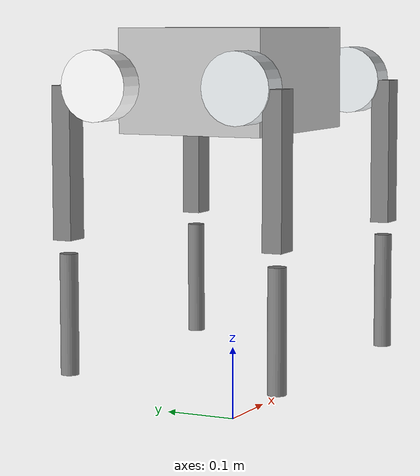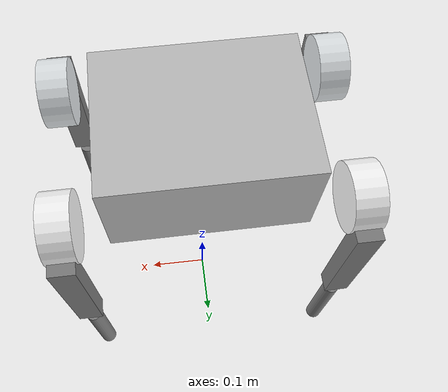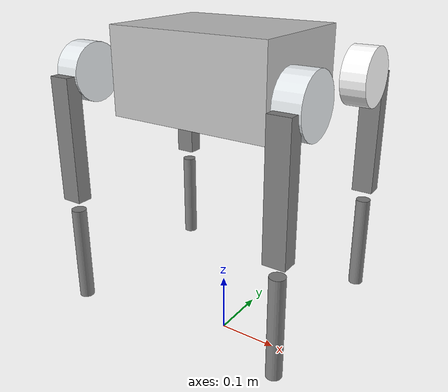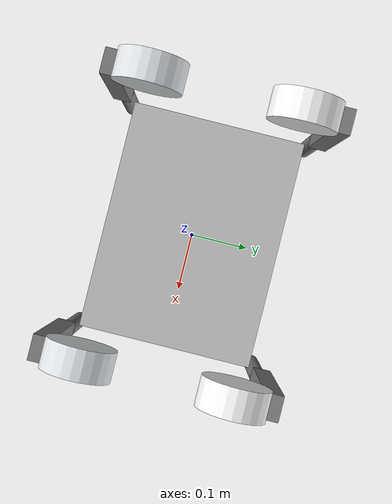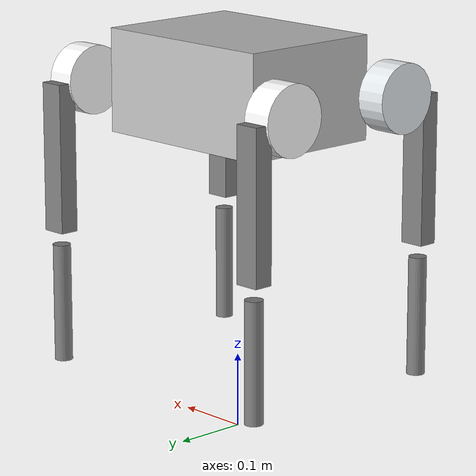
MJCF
<?xml version="1.0" ?>
<mujoco model="vbot">
  <compiler angle="radian" />
  <option cone="elliptic" impratio="100" />
  <default>
    <material specular="0" shininess="0.25"/>
    <default class="vita">
      <geom friction="0.4" margin="0.001" condim="3" />
      <joint axis="0 1 0" damping="0.1" armature="0.0043" frictionloss="0.2" />
      <motor forcerange="-17 17" />
      <default class="R_hip_joint">
        <joint axis="1 0 0" range="-0.73304 0.73304" actuatorfrcrange="-17 17" limited="true" />
      </default>
      <default class="L_hip_joint">
        <joint axis="1 0 0" range="-0.73304 0.73304" actuatorfrcrange="-17 17" limited="true" />
      </default>
      <default class="F_thigh_joint">
        <joint range="-1.559 3.1298" actuatorfrcrange="-17 17" limited="true" />
      </default>
      <default class="R_thigh_joint">
        <joint range="-0.51181 4.177" actuatorfrcrange="-17 17" limited="true" />
      </default>
      <default class="calf_joint">
        <joint range="-2.6387 -0.7854" actuatorfrcrange="-34 34" limited="true" damping="0.1" armature="0.04" frictionloss="0.2" />
        <motor forcerange="-34 34" />
      </default>
      <default class="visual">
        <geom contype="0" conaffinity="0" group="2" density="0" />
      </default>
      <default class="collision">
        <geom group="3" rgba="0.752941 0.752941 0.752941 1" />
        <default class="foot">
          <geom size="0.021" quat="0.707107 -0.707107 0 0" pos="0 0 0" />
        </default>
      </default>
    </default>
  </default>
  <worldbody>
    <light name="spotlight" mode="targetbodycom" target="base" pos="0 -1 2" cutoff="30"/>
    <body name="base" pos="0 0 0.462" childclass="vita">
      <inertial pos="0.026103 0.000278 0.024686" mass="9.016326" fullinertia="0.060632 0.144345 0.125819 -0.000200 -0.033265 -0.000044" />
      <freejoint name="joint_fixed_world" />
      <site name="trunk_imu" pos="0 0 0" />
      <geom name="visual_base" type="box" size="0.133329 0.101205 0.068913" pos="0 0 0.004583" rgba="0.752941 0.752941 0.752941 1" class="visual" />
      <geom name="collision_head_box" class="collision" size="0.084602 0.078997 0.041873" pos="0.18389 0 0.16552" type="box" rgba="0.498039 0.498039 0.498039 1" />
      <geom name="collision_middle_box" size="0.133329 0.101205 0.068913" pos="0 0 0.004583" type="box" class="collision" />
      <geom name="collision_front_dangban_box" size="0.0058255 0.029011 0.029011" pos="0.247938 0 0.006492" type="box" class="collision" />
      <geom name="collision_back_dangban_box" size="0.0058255 0.029011 0.023818" pos="-0.249278 0 0.006492" type="box" class="collision" />
      <geom name="collision_low_bar_FL_box" size="0.008 0.008 0.0065" pos="0.083 0.042 -0.086" type="box" class="collision" />
      <geom name="collision_low_bar_FR_box" size="0.008 0.008 0.0065" pos="0.083 -0.042 -0.086" type="box" class="collision" />
      <geom name="collision_low_bar_RL_box" size="0.008 0.008 0.0065" pos="-0.108 0.042 -0.086" type="box" class="collision" />
      <geom name="collision_low_bar_RR_box" size="0.008 0.008 0.0065" pos="-0.108 -0.042 -0.086" type="box" class="collision" />

      <body name="FR_hip" pos="0.18453 -0.051 0">
        <inertial pos="-0.027882 0.015355 0" quat="-0.137609 0.678417 0.233155 0.682973" mass="0.079643" diaginertia="8.72171e-05 7.7874e-05 2.29089e-05" />
        <joint name="FR_hip_joint" class="R_hip_joint" />
        <geom name="visual_FR_hip" type="cylinder" size="0.046 0.02" pos="0 -0.04875 0" quat="0.707107 0 0.707107 0" rgba="0.898039 0.917647 0.929412 1" class="visual" />
        <geom name="collision_FR_hip" type="cylinder" size="0.046 0.02" pos="0 -0.04875 0" quat="0.707107 0 0.707107 0" class="collision" />
        <body name="FR_thigh" pos="0 -0.0975 0">
          <inertial pos="-0.000498 0.038065 -0.024467" quat="0.975282 -0.219111 0.024734 0.0142991" mass="1.55038" diaginertia="0.00679074 0.00586921 0.00204705" />
          <joint name="FR_thigh_joint" class="F_thigh_joint" />
          <geom name="visual_FR_thigh" type="box" size="0.017 0.013 0.1" pos="0 0 -0.1" rgba="0.498039 0.498039 0.498039 1" class="visual" />
          <geom name="collision_mainlink_box" size="0.0129095 0.013 0.06282" pos="-0.029488 -0.000724 -0.10287" quat="0.999071 0 -0.0430946 0" type="box" class="collision" />
          <geom name="collision_self_check_box" size="0.00126 0.013 0.0627725" pos="0.01289 -0.000372 -0.102949" quat="0.997989 0 0.063395 0" type="box" class="collision" />
          <geom name="collision_motor_cylinder" size="0.044 0.038455" pos="0 0.02351 -0.000177" quat="-0.707107 0.707107 0 0" type="cylinder" class="collision" />
          <geom name="collision_revo_left_box" size="0.015 0.002 0.02" pos="-0.00614 0.014268 -0.188644" quat="0.995396 0 -0.0958456 0" type="box" class="collision" />
          <geom name="collision_revo_right_box" size="0.015 0.002 0.02" pos="-0.00614 -0.014448 -0.188644" quat="0.995396 0 -0.0958456 0" type="box" class="collision" />
          <body name="FR_calf" pos="0 0 -0.1985">
            <inertial pos="0.00261631 0 -0.125302" quat="0.706944 -0.0151852 -0.0151852 0.706944" mass="0.183986" diaginertia="0.00125035 0.0012368 3.55485e-05" />
            <joint name="FR_calf_joint" class="calf_joint" />
            <geom name="visual_FR_calf" type="cylinder" size="0.012 0.08" pos="0 0 -0.1" rgba="0.498039 0.498039 0.498039 1" class="visual" />
            <geom name="collision_upper_box" size="0.012 0.007644 0.0242675" pos="0.018049 0 -0.186508" quat="0.998889 0 0.047125 0" type="box" class="collision" />
            <geom name="collision_mid_box" size="0.01 0.009 0.06" pos="0.00376 0 -0.099894" quat="0.994686 0 -0.102956 0" type="box" class="collision" />
            <geom name="collision_lower_box" size="0.014 0.007644 0.02" pos="-0.005451 0 -0.017378" quat="0.999978 0 0.00661145 0" type="box" class="collision" />
            <geom name="collision_backprotect_box" size="0.002 0.007644 0.02" pos="-0.001309 0 -0.175631" quat="0.981769 0 0.19008 0" type="box" class="collision" />
            <body name="FR_foot" pos="0 0 -0.214">
              <geom class="foot" name="FR" />
            </body>
          </body>
        </body>
      </body>

      <body name="FL_hip" pos="0.18453 0.051 0">
        <inertial pos="-0.027882 -0.015355 0" quat="0.137609 0.678417 -0.233155 0.682973" mass="0.079643" diaginertia="8.72171e-05 7.7874e-05 2.29089e-05" />
        <joint name="FL_hip_joint" class="L_hip_joint" />
        <geom name="visual_FL_hip" type="cylinder" size="0.046 0.02" pos="0 0.04875 0" quat="0.707107 0 0.707107 0" rgba="1 1 1 1" class="visual" />
        <geom name="collision_FL_hip" type="cylinder" size="0.046 0.02" pos="0 0.04875 0" quat="0.707107 0 0.707107 0" class="collision" />
        <body name="FL_thigh" pos="0 0.0975 0">
          <inertial pos="-0.000498 -0.038065 -0.024467" quat="0.975282 0.219111 0.024734 -0.0142991" mass="1.55038" diaginertia="0.00679074 0.00586921 0.00204705" />
          <joint name="FL_thigh_joint" class="F_thigh_joint" />
          <geom name="visual_FL_thigh" type="box" size="0.017 0.013 0.1" pos="0 0 -0.1" rgba="0.498039 0.498039 0.498039 1" class="visual" />
          <geom name="collision_mainlink_box" size="0.0129095 0.013 0.06282" pos="-0.029488 0.000724 -0.10287" quat="0.999071 0 -0.0430946 0" type="box" class="collision" />
          <geom name="collision_self_check_box" size="0.00126 0.013 0.0627725" pos="0.01289 0.000372 -0.102949" quat="0.997989 0 0.063395 0" type="box" class="collision" />
          <geom name="collision_motor_cylinder" size="0.044 0.038455" pos="0 -0.02351 -0.000177" quat="-0.707107 0.707107 0 0" type="cylinder" class="collision" />
          <geom name="collision_revo_left_box" size="0.015 0.002 0.02" pos="-0.00614 -0.014268 -0.188644" quat="0.995396 0 -0.0958456 0" type="box" class="collision" />
          <geom name="collision_revo_right_box" size="0.015 0.002 0.02" pos="-0.00614 0.014448 -0.188644" quat="0.995396 0 -0.0958456 0" type="box" class="collision" />
          <body name="FL_calf" pos="0 0 -0.1985">
            <inertial pos="0.00261631 0 -0.125302" quat="0.706944 -0.0151852 -0.0151852 0.706944" mass="0.183986" diaginertia="0.00125035 0.0012368 3.55485e-05" />
            <joint name="FL_calf_joint" class="calf_joint" />
            <geom name="visual_FL_calf" type="cylinder" size="0.012 0.08" pos="0 0 -0.1" rgba="0.498039 0.498039 0.498039 1" class="visual" />
            <geom name="collision_upper_box" size="0.012 0.007644 0.0242675" pos="0.018049 0 -0.186508" quat="0.998889 0 0.047125 0" type="box" class="collision" />
            <geom name="collision_mid_box" size="0.01 0.009 0.06" pos="0.00376 0 -0.099894" quat="0.994686 0 -0.102956 0" type="box" class="collision" />
            <geom name="collision_lower_box" size="0.014 0.007644 0.02" pos="-0.005451 0 -0.017378" quat="0.999978 0 0.00661145 0" type="box" class="collision" />
            <geom name="collision_backprotect_box" size="0.002 0.007644 0.02" pos="-0.001309 0 -0.175631" quat="0.981769 0 0.19008 0" type="box" class="collision" />
            <body name="FL_foot" pos="0 0 -0.214">
              <geom class="foot" name="FL" />
            </body>
          </body>
        </body>
      </body>

      <body name="RR_hip" pos="-0.18453 -0.051 0">
        <inertial pos="0.027882 0.015355 0" quat="0.233155 0.682973 -0.137609 0.678417" mass="0.079643" diaginertia="8.72171e-05 7.7874e-05 2.29089e-05" />
        <joint name="RR_hip_joint" class="R_hip_joint" />
        <geom name="visual_RR_hip" type="cylinder" size="0.046 0.02" pos="0 -0.04875 0" quat="0.707107 0 0.707107 0" rgba="0.898039 0.917647 0.929412 1" class="visual" />
        <geom name="collision_RR_hip" type="cylinder" size="0.046 0.02" pos="0 -0.04875 0" quat="0.707107 0 0.707107 0" class="collision" />
        <body name="RR_thigh" pos="0 -0.0975 0">
          <inertial pos="-0.000498 0.038065 -0.024467" quat="0.975282 -0.219111 0.024734 0.0142991" mass="1.55038" diaginertia="0.00679074 0.00586921 0.00204705" />
          <joint name="RR_thigh_joint" class="R_thigh_joint" />
          <geom name="visual_RR_thigh" type="box" size="0.017 0.013 0.1" pos="0 0 -0.1" rgba="0.498039 0.498039 0.498039 1" class="visual" />
          <geom name="collision_mainlink_box" size="0.0129095 0.013 0.06282" pos="-0.029488 -0.000724 -0.10287" quat="0.999071 0 -0.0430946 0" type="box" class="collision" />
          <geom name="collision_self_check_box" size="0.00126 0.013 0.0627725" pos="0.01289 -0.000372 -0.102949" quat="0.997989 0 0.063395 0" type="box" class="collision" />
          <geom name="collision_motor_cylinder" size="0.044 0.038455" pos="0 0.02351 -0.000177" quat="-0.707107 0.707107 0 0" type="cylinder" class="collision" />
          <geom name="collision_revo_left_box" size="0.015 0.002 0.02" pos="-0.00614 0.014268 -0.188644" quat="0.995396 0 -0.0958456 0" type="box" class="collision" />
          <geom name="collision_revo_right_box" size="0.015 0.002 0.02" pos="-0.00614 -0.014448 -0.188644" quat="0.995396 0 -0.0958456 0" type="box" class="collision" />
          <body name="RR_calf" pos="0 0 -0.1985">
            <inertial pos="0.00261631 0 -0.125302" quat="0.706944 -0.0151852 -0.0151852 0.706944" mass="0.183986" diaginertia="0.00125035 0.0012368 3.55485e-05" />
            <joint name="RR_calf_joint" class="calf_joint" />
            <geom name="visual_RR_calf" type="cylinder" size="0.012 0.08" pos="0 0 -0.1" rgba="0.498039 0.498039 0.498039 1" class="visual" />
            <geom name="collision_upper_box" size="0.012 0.007644 0.0242675" pos="0.018049 0 -0.186508" quat="0.998889 0 0.047125 0" type="box" class="collision" />
            <geom name="collision_mid_box" size="0.01 0.009 0.06" pos="0.00376 0 -0.099894" quat="0.994686 0 -0.102956 0" type="box" class="collision" />
            <geom name="collision_lower_box" size="0.014 0.007644 0.02" pos="-0.005451 0 -0.017378" quat="0.999978 0 0.00661145 0" type="box" class="collision" />
            <geom name="collision_backprotect_box" size="0.002 0.007644 0.02" pos="-0.001309 0 -0.175631" quat="0.981769 0 0.19008 0" type="box" class="collision" />
            <body name="RR_foot" pos="0 0 -0.214">
              <geom class="foot" name="RR" />
            </body>
          </body>
        </body>
      </body>

      <body name="RL_hip" pos="-0.18453 0.051 0">
        <inertial pos="0.027882 -0.015355 0" quat="-0.233155 0.682973 0.137609 0.678417" mass="0.079643" diaginertia="8.72171e-05 7.7874e-05 2.29089e-05" />
        <joint name="RL_hip_joint" class="L_hip_joint" />
        <geom name="visual_RL_hip" type="cylinder" size="0.046 0.02" pos="0 0.04875 0" quat="0.707107 0 0.707107 0" rgba="1 1 1 1" class="visual" />
        <geom name="collision_RL_hip" type="cylinder" size="0.046 0.02" pos="0 0.04875 0" quat="0.707107 0 0.707107 0" class="collision" />
        <body name="RL_thigh" pos="0 0.0975 0">
          <inertial pos="-0.000498 -0.038065 -0.024467" quat="0.975282 0.219111 0.024734 -0.0142991" mass="1.55038" diaginertia="0.00679074 0.00586921 0.00204705" />
          <joint name="RL_thigh_joint" class="R_thigh_joint" />
          <geom name="visual_RL_thigh" type="box" size="0.017 0.013 0.1" pos="0 0 -0.1" rgba="0.498039 0.498039 0.498039 1" class="visual" />
          <geom name="collision_mainlink_box" size="0.0129095 0.013 0.06282" pos="-0.029488 0.000724 -0.10287" quat="0.999071 0 -0.0430946 0" type="box" class="collision" />
          <geom name="collision_self_check_box" size="0.00126 0.013 0.0627725" pos="0.01289 0.000372 -0.102949" quat="0.997989 0 0.063395 0" type="box" class="collision" />
          <geom name="collision_motor_cylinder" size="0.044 0.038455" pos="0 -0.02351 -0.000177" quat="-0.707107 0.707107 0 0" type="cylinder" class="collision" />
          <geom name="collision_revo_left_box" size="0.015 0.002 0.02" pos="-0.00614 -0.014268 -0.188644" quat="0.995396 0 -0.0958456 0" type="box" class="collision" />
          <geom name="collision_revo_right_box" size="0.015 0.002 0.02" pos="-0.00614 0.014448 -0.188644" quat="0.995396 0 -0.0958456 0" type="box" class="collision" />
          <body name="RL_calf" pos="0 0 -0.1985">
            <inertial pos="0.00261631 0 -0.125302" quat="0.706944 -0.0151852 -0.0151852 0.706944" mass="0.183986" diaginertia="0.00125035 0.0012368 3.55485e-05" />
            <joint name="RL_calf_joint" class="calf_joint" />
            <geom name="visual_RL_calf" type="cylinder" size="0.012 0.08" pos="0 0 -0.1" rgba="0.498039 0.498039 0.498039 1" class="visual" />
            <geom name="collision_upper_box" size="0.012 0.007644 0.0242675" pos="0.018049 0 -0.186508" quat="0.998889 0 0.047125 0" type="box" class="collision" />
            <geom name="collision_mid_box" size="0.01 0.009 0.06" pos="0.00376 0 -0.099894" quat="0.994686 0 -0.102956 0" type="box" class="collision" />
            <geom name="collision_lower_box" size="0.014 0.007644 0.02" pos="-0.005451 0 -0.017378" quat="0.999978 0 0.00661145 0" type="box" class="collision" />
            <geom name="collision_backprotect_box" size="0.002 0.007644 0.02" pos="-0.001309 0 -0.175631" quat="0.981769 0 0.19008 0" type="box" class="collision" />
            <body name="RL_foot" pos="0 0 -0.214">
              <geom class="foot" name="RL" />
            </body>
          </body>
        </body>
      </body>
    </body>
  </worldbody>
  <actuator>
    <motor class="vita" name="FR_hip_joint" joint="FR_hip_joint" />
    <motor class="vita" name="FR_thigh_joint" joint="FR_thigh_joint" />
    <motor class="calf_joint" name="FR_calf_joint" joint="FR_calf_joint" />
    <motor class="vita" name="FL_hip_joint" joint="FL_hip_joint" />
    <motor class="vita" name="FL_thigh_joint" joint="FL_thigh_joint" />
    <motor class="calf_joint" name="FL_calf_joint" joint="FL_calf_joint" />
    <motor class="vita" name="RR_hip_joint" joint="RR_hip_joint" />
    <motor class="vita" name="RR_thigh_joint" joint="RR_thigh_joint" />
    <motor class="calf_joint" name="RR_calf_joint" joint="RR_calf_joint" />
    <motor class="vita" name="RL_hip_joint" joint="RL_hip_joint" />
    <motor class="vita" name="RL_thigh_joint" joint="RL_thigh_joint" />
    <motor class="calf_joint" name="RL_calf_joint" joint="RL_calf_joint" />
  </actuator>
  <sensor>
    <jointpos name="FR_hip_joint_pos" joint="FR_hip_joint" />
    <jointpos name="FR_thigh_joint_pos" joint="FR_thigh_joint" />
    <jointpos name="FR_calf_joint_pos" joint="FR_calf_joint" />
    <jointpos name="FL_hip_joint_pos" joint="FL_hip_joint" />
    <jointpos name="FL_thigh_joint_pos" joint="FL_thigh_joint" />
    <jointpos name="FL_calf_joint_pos" joint="FL_calf_joint" />
    <jointpos name="RR_hip_joint_pos" joint="RR_hip_joint" />
    <jointpos name="RR_thigh_joint_pos" joint="RR_thigh_joint" />
    <jointpos name="RR_calf_joint_pos" joint="RR_calf_joint" />
    <jointpos name="RL_hip_joint_pos" joint="RL_hip_joint" />
    <jointpos name="RL_thigh_joint_pos" joint="RL_thigh_joint" />
    <jointpos name="RL_calf_joint_pos" joint="RL_calf_joint" />
    <jointvel name="FR_hip_joint_vel" joint="FR_hip_joint" />
    <jointvel name="FR_thigh_joint_vel" joint="FR_thigh_joint" />
    <jointvel name="FR_calf_joint_vel" joint="FR_calf_joint" />
    <jointvel name="FL_hip_joint_vel" joint="FL_hip_joint" />
    <jointvel name="FL_thigh_joint_vel" joint="FL_thigh_joint" />
    <jointvel name="FL_calf_joint_vel" joint="FL_calf_joint" />
    <jointvel name="RR_hip_joint_vel" joint="RR_hip_joint" />
    <jointvel name="RR_thigh_joint_vel" joint="RR_thigh_joint" />
    <jointvel name="RR_calf_joint_vel" joint="RR_calf_joint" />
    <jointvel name="RL_hip_joint_vel" joint="RL_hip_joint" />
    <jointvel name="RL_thigh_joint_vel" joint="RL_thigh_joint" />
    <jointvel name="RL_calf_joint_vel" joint="RL_calf_joint" />
    <jointactuatorfrc name="FR_hip_joint_torque" joint="FR_hip_joint" noise="0.01" />
    <jointactuatorfrc name="FR_thigh_joint_torque" joint="FR_thigh_joint" noise="0.01" />
    <jointactuatorfrc name="FR_calf_joint_torque" joint="FR_calf_joint" noise="0.01" />
    <jointactuatorfrc name="FL_hip_joint_torque" joint="FL_hip_joint" noise="0.01" />
    <jointactuatorfrc name="FL_thigh_joint_torque" joint="FL_thigh_joint" noise="0.01" />
    <jointactuatorfrc name="FL_calf_joint_torque" joint="FL_calf_joint" noise="0.01" />
    <jointactuatorfrc name="RR_hip_joint_torque" joint="RR_hip_joint" noise="0.01" />
    <jointactuatorfrc name="RR_thigh_joint_torque" joint="RR_thigh_joint" noise="0.01" />
    <jointactuatorfrc name="RR_calf_joint_torque" joint="RR_calf_joint" noise="0.01" />
    <jointactuatorfrc name="RL_hip_joint_torque" joint="RL_hip_joint" noise="0.01" />
    <jointactuatorfrc name="RL_thigh_joint_torque" joint="RL_thigh_joint" noise="0.01" />
    <jointactuatorfrc name="RL_calf_joint_torque" joint="RL_calf_joint" noise="0.01" />
    <framequat name="trunk_quat" objtype="site" objname="trunk_imu" />
    <gyro name="base_gyro" site="trunk_imu" />
    <accelerometer name="trunk_acc" site="trunk_imu" />
    <framepos name="trunk_pos" objtype="site" objname="trunk_imu" />
    <framelinvel name="base_linvel" objtype="site" objname="trunk_imu" />
  </sensor>
</mujoco>
